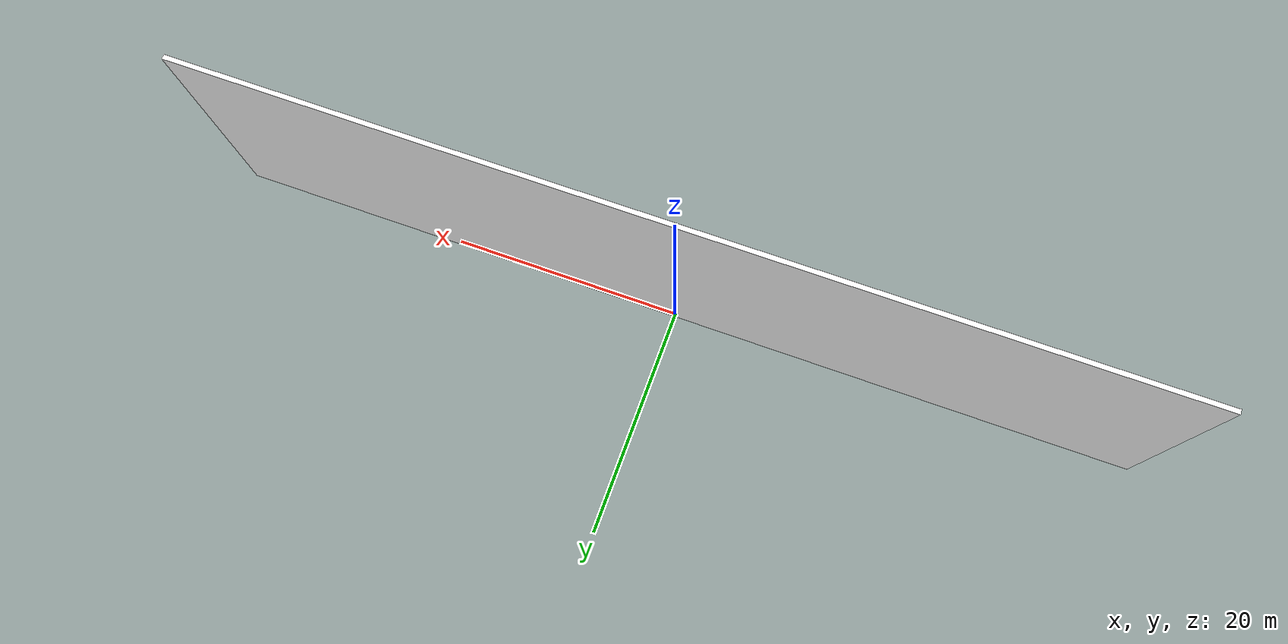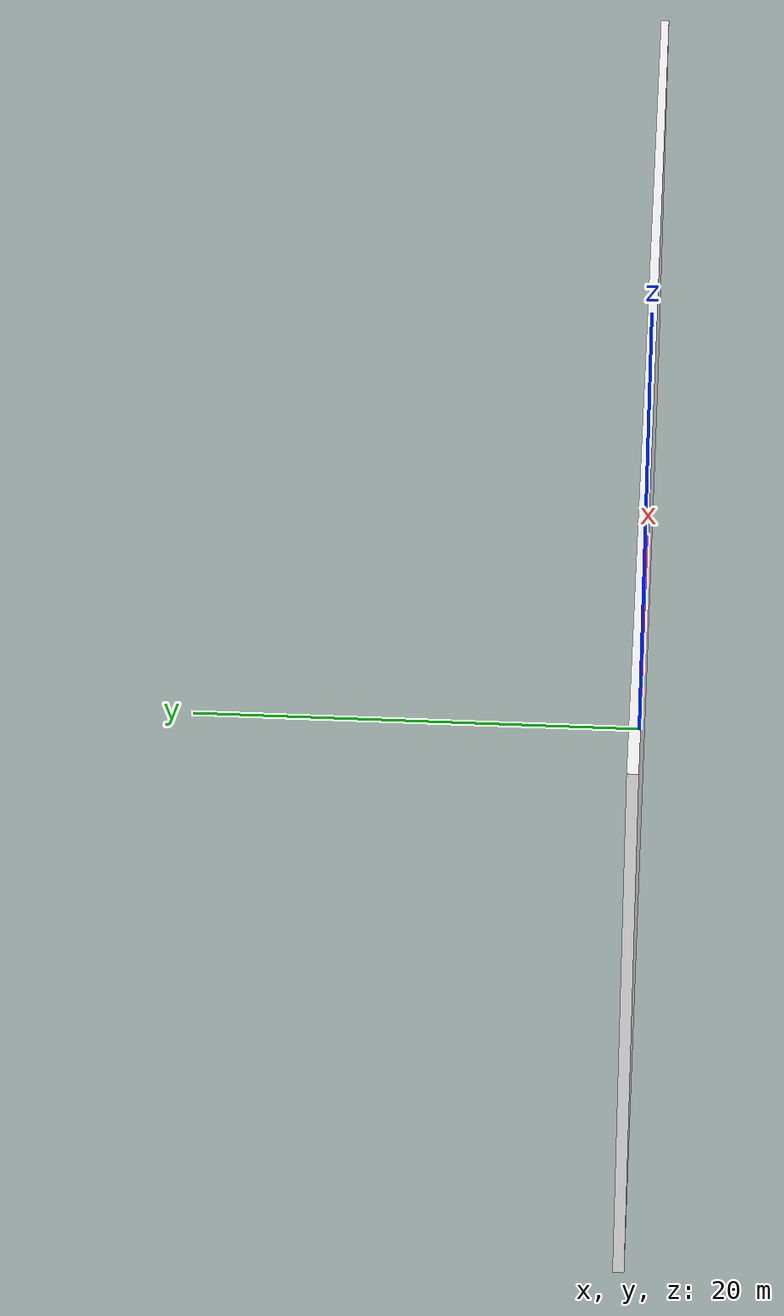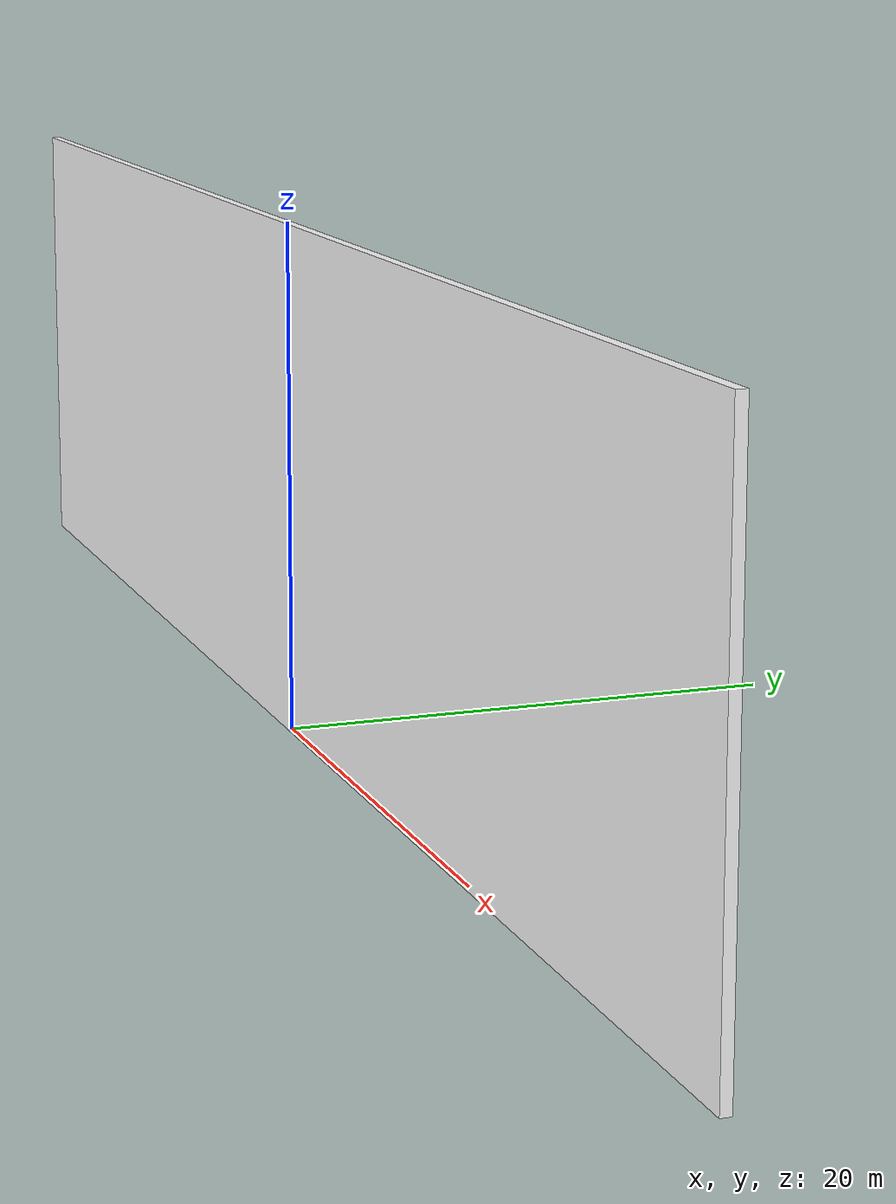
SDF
<?xml version="1.0" ?>
<sdf version="1.6">
  <model name="bbox_wall">
    <static>true</static>
    <link name="link">
      <pose>0 0 10 0 0 0</pose>
      <collision name="collision">
        <geometry>
          <box>
            <size>80 0.4 20</size>
          </box>
        </geometry>
      </collision>
      <visual name="visual">
        <geometry>
          <box>
            <size>80 0.4 20</size>
          </box>
        </geometry>
        <material>
          <ambient>0.8 0.8 0.8 1</ambient>
          <diffuse>1.0 1.0 1.0 1</diffuse>
          <specular>0.2 0.2 0.2 1</specular>
          <pbr>
            <metal>
              <albedo_map>model://bbox_wall/materials/textures/bush.jpg</albedo_map>
            </metal>
          </pbr>
        </material>
      </visual>
    </link>
  </model>
</sdf>
